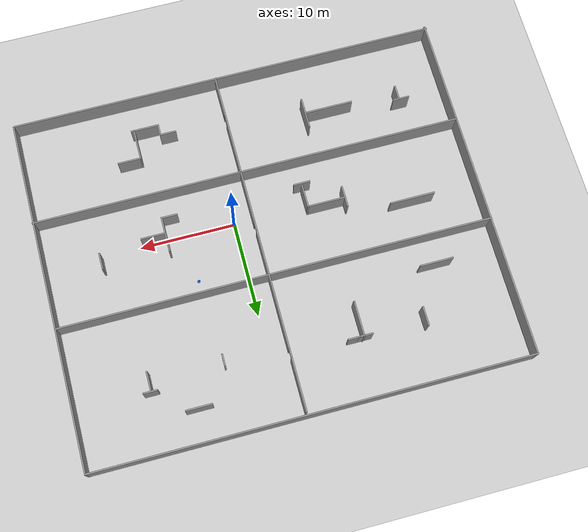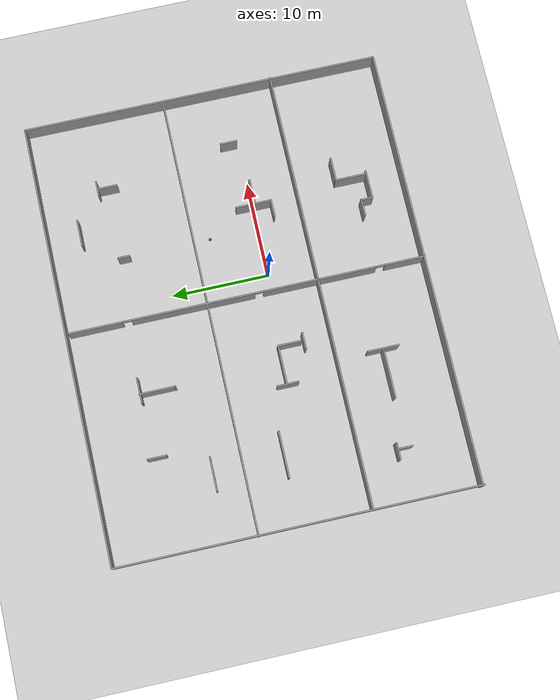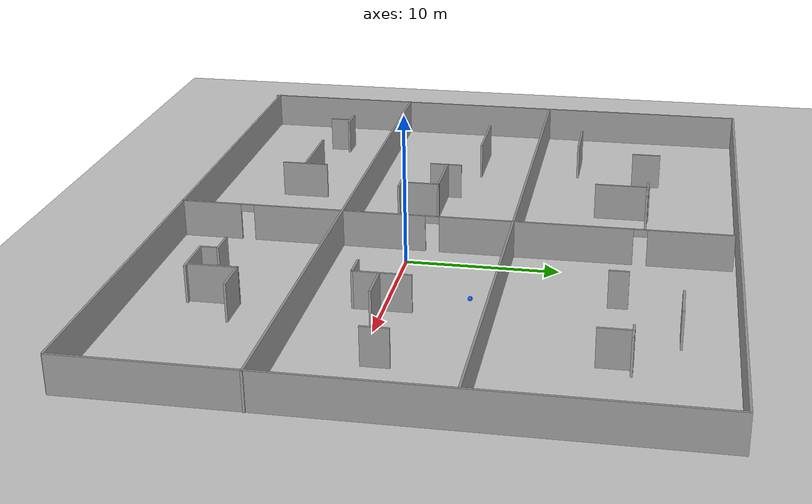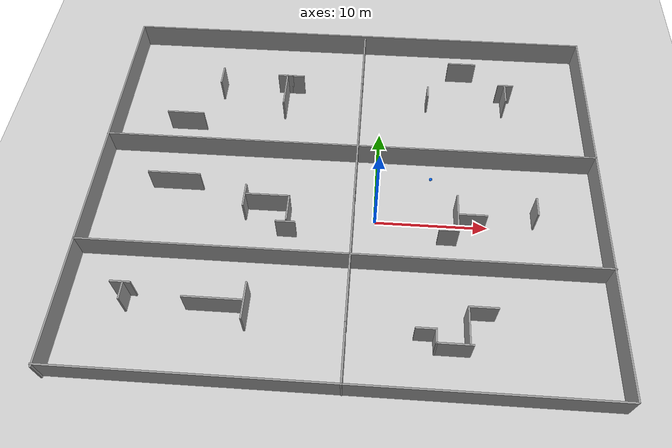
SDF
<sdf version="1.7">
 <world name="default">
  <light name="sun" type="directional">
   <pose>0 0 10 0 -0 0</pose>
   <diffuse>0.8 0.8 0.8 1</diffuse>
   <specular>0.2 0.2 0.2 1</specular>
   <attenuation>
    <range>1000</range>
    <constant>0.9</constant>
    <linear>0.01</linear>
    <quadratic>0.001</quadratic>
   </attenuation>
   <direction>-0.5 0.1 -0.9</direction>
   <spot><inner_angle>0</inner_angle><outer_angle>0</outer_angle><falloff>0</falloff></spot>
  </light>
  <model name="ground_plane">
   <static>1</static>
   <link name="link">
    <collision name="collision">
     <geometry><plane><normal>0 0 1</normal><size>100 100</size></plane></geometry>
     <surface><friction><ode><mu>100</mu><mu2>50</mu2></ode></friction></surface>
    </collision>
    <visual name="visual">
     <cast_shadows>0</cast_shadows>
     <geometry><plane><normal>0 0 1</normal><size>100 100</size></plane></geometry>
     <material>
      <script><uri>file://media/materials/scripts/gazebo.material</uri><name>Gazebo/Grey</name></script>
     </material>
    </visual>
   </link>
  </model>
  <gravity>0 0 -9.8</gravity>
  <magnetic_field>6e-06 2.3e-05 -4.2e-05</magnetic_field>
  <atmosphere type="adiabatic"/>
  <physics type="ode">
   <max_step_size>0.001</max_step_size>
   <real_time_factor>1</real_time_factor>
   <real_time_update_rate>1000</real_time_update_rate>
  </physics>
  <scene><ambient>0.4 0.4 0.4 1</ambient><background>0.7 0.7 0.7 1</background><shadows>1</shadows></scene>
  <spherical_coordinates>
   <surface_model>EARTH_WGS84</surface_model>
   <latitude_deg>0</latitude_deg>
   <longitude_deg>0</longitude_deg>
   <elevation>0</elevation>
   <heading_deg>0</heading_deg>
  </spherical_coordinates>
  <model name="map2">
   <pose>-2.78091 2.6918 0 0 -0 0</pose>
   <link name="Wall_146">
    <collision name="Wall_146_Collision">
     <geometry><box><size>3 0.15 2.5</size></box></geometry>
     <pose>0 0 1.25 0 -0 0</pose>
    </collision>
    <visual name="Wall_146_Visual">
     <pose>0 0 1.25 0 -0 0</pose>
     <geometry><box><size>3 0.15 2.5</size></box></geometry>
     <material>
      <script><uri>file://media/materials/scripts/gazebo.material</uri><name>Gazebo/Grey</name></script>
      <ambient>1 1 1 1</ambient>
     </material>
     <meta><layer>0</layer></meta>
    </visual>
    <pose>9.35667 -14.6992 0 0 -0 3.14159</pose>
   </link>
   <link name="Wall_147">
    <collision name="Wall_147_Collision">
     <geometry><box><size>1.19733 0.15 2.5</size></box></geometry>
     <pose>0 0 1.25 0 -0 0</pose>
    </collision>
    <visual name="Wall_147_Visual">
     <pose>0 0 1.25 0 -0 0</pose>
     <geometry><box><size>1.19733 0.15 2.5</size></box></geometry>
     <material>
      <script><uri>file://media/materials/scripts/gazebo.material</uri><name>Gazebo/Grey</name></script>
      <ambient>1 1 1 1</ambient>
     </material>
     <meta><layer>0</layer></meta>
    </visual>
    <pose>7.93167 -14.1756 0 0 -0 1.5708</pose>
   </link>
   <link name="Wall_148">
    <collision name="Wall_148_Collision">
     <geometry><box><size>1.75 0.15 2.5</size></box></geometry>
     <pose>0 0 1.25 0 -0 0</pose>
    </collision>
    <visual name="Wall_148_Visual">
     <pose>0 0 1.25 0 -0 0</pose>
     <geometry><box><size>1.75 0.15 2.5</size></box></geometry>
     <material>
      <script><uri>file://media/materials/scripts/gazebo.material</uri><name>Gazebo/Grey</name></script>
      <ambient>1 1 1 1</ambient>
     </material>
     <meta><layer>0</layer></meta>
    </visual>
    <pose>7.13167 -13.5589 0 0 -0 3.14159</pose>
   </link>
   <link name="Wall_161">
    <collision name="Wall_161_Collision">
     <geometry><box><size>37.25 0.15 2.5</size></box></geometry>
     <pose>0 0 1.25 0 -0 0</pose>
    </collision>
    <visual name="Wall_161_Visual">
     <pose>0 0 1.25 0 -0 0</pose>
     <geometry><box><size>37.25 0.15 2.5</size></box></geometry>
     <material>
      <script><uri>file://media/materials/scripts/gazebo.material</uri><name>Gazebo/Grey</name></script>
      <ambient>1 1 1 1</ambient>
     </material>
     <meta><layer>0</layer></meta>
    </visual>
    <pose>-22.6696 -0 0 0 -0 1.5708</pose>
   </link>
   <link name="Wall_164">
    <collision name="Wall_164_Collision">
     <geometry><box><size>45.5 0.15 2.5</size></box></geometry>
     <pose>0 0 1.25 0 -0 0</pose>
    </collision>
    <visual name="Wall_164_Visual">
     <pose>0 0 1.25 0 -0 0</pose>
     <geometry><box><size>45.5 0.15 2.5</size></box></geometry>
     <material>
      <script><uri>file://media/materials/scripts/gazebo.material</uri><name>Gazebo/Grey</name></script>
      <ambient>1 1 1 1</ambient>
     </material>
     <meta><layer>0</layer></meta>
    </visual>
    <pose>-0.07594 -18.3696 0 0 -0 3.14159</pose>
   </link>
   <link name="Wall_166">
    <collision name="Wall_166_Collision">
     <geometry><box><size>45.5 0.15 2.5</size></box></geometry>
     <pose>0 0 1.25 0 -0 0</pose>
    </collision>
    <visual name="Wall_166_Visual">
     <pose>0 0 1.25 0 -0 0</pose>
     <geometry><box><size>45.5 0.15 2.5</size></box></geometry>
     <material>
      <script><uri>file://media/materials/scripts/gazebo.material</uri><name>Gazebo/Grey</name></script>
      <ambient>1 1 1 1</ambient>
     </material>
     <meta><layer>0</layer></meta>
    </visual>
    <pose>0.005431 18.55 0 0 -0 0</pose>
   </link>
   <link name="Wall_167">
    <collision name="Wall_167_Collision">
     <geometry><box><size>37 0.15 2.5</size></box></geometry>
     <pose>0 0 1.25 0 -0 0</pose>
    </collision>
    <visual name="Wall_167_Visual">
     <pose>0 0 1.25 0 -0 0</pose>
     <geometry><box><size>37 0.15 2.5</size></box></geometry>
     <material>
      <script><uri>file://media/materials/scripts/gazebo.material</uri><name>Gazebo/Grey</name></script>
      <ambient>1 1 1 1</ambient>
     </material>
     <meta><layer>0</layer></meta>
    </visual>
    <pose>22.6804 0.125 0 0 -0 -1.5708</pose>
   </link>
   <link name="Wall_170">
    <collision name="Wall_170_Collision">
     <geometry><box><size>45.5 0.15 2.5</size></box></geometry>
     <pose>0 0 1.25 0 -0 0</pose>
    </collision>
    <visual name="Wall_170_Visual">
     <pose>0 0 1.25 0 -0 0</pose>
     <geometry><box><size>45.5 0.15 2.5</size></box></geometry>
     <material>
      <script><uri>file://media/materials/scripts/gazebo.material</uri><name>Gazebo/Grey</name></script>
      <ambient>1 1 1 1</ambient>
     </material>
     <meta><layer>0</layer></meta>
    </visual>
    <pose>-0.017636 4.05035 0 0 -0 0</pose>
   </link>
   <link name="Wall_172">
    <collision name="Wall_172_Collision">
     <geometry><box><size>45.5 0.15 2.5</size></box></geometry>
     <pose>0 0 1.25 0 -0 0</pose>
    </collision>
    <visual name="Wall_172_Visual">
     <pose>0 0 1.25 0 -0 0</pose>
     <geometry><box><size>45.5 0.15 2.5</size></box></geometry>
     <material>
      <script><uri>file://media/materials/scripts/gazebo.material</uri><name>Gazebo/Grey</name></script>
      <ambient>1 1 1 1</ambient>
     </material>
     <meta><layer>0</layer></meta>
    </visual>
    <pose>0.075941 -7.36595 0 0 -0 0</pose>
   </link>
   <link name="Wall_174">
    <pose>0.801862 -0.107416 0 0 -0 1.5708</pose>
    <visual name="Wall_174_Visual_0">
     <pose>-16.2916 0 1.25 0 -0 0</pose>
     <geometry><box><size>4.16685 0.15 2.5</size></box></geometry>
     <material>
      <script><uri>file://media/materials/scripts/gazebo.material</uri><name>Gazebo/Grey</name></script>
      <ambient>1 1 1 1</ambient>
     </material>
     <meta><layer>0</layer></meta>
    </visual>
    <collision name="Wall_174_Collision_0">
     <geometry><box><size>4.16685 0.15 2.5</size></box></geometry>
     <pose>-16.2916 0 1.25 0 -0 0</pose>
    </collision>
    <visual name="Wall_174_Visual_1">
     <pose>-7.47742 0 1.25 0 -0 0</pose>
     <geometry><box><size>11.6615 0.15 2.5</size></box></geometry>
     <material>
      <script><uri>file://media/materials/scripts/gazebo.material</uri><name>Gazebo/Grey</name></script>
      <ambient>1 1 1 1</ambient>
     </material>
     <meta><layer>0</layer></meta>
    </visual>
    <collision name="Wall_174_Collision_1">
     <geometry><box><size>11.6615 0.15 2.5</size></box></geometry>
     <pose>-7.47742 0 1.25 0 -0 0</pose>
    </collision>
    <visual name="Wall_174_Visual_2">
     <pose>5.5958 0 1.25 0 -0 0</pose>
     <geometry><box><size>12.685 0.15 2.5</size></box></geometry>
     <material>
      <script><uri>file://media/materials/scripts/gazebo.material</uri><name>Gazebo/Grey</name></script>
      <ambient>1 1 1 1</ambient>
     </material>
     <meta><layer>0</layer></meta>
    </visual>
    <collision name="Wall_174_Collision_2">
     <geometry><box><size>12.685 0.15 2.5</size></box></geometry>
     <pose>5.5958 0 1.25 0 -0 0</pose>
    </collision>
    <visual name="Wall_174_Visual_3">
     <pose>15.6066 0 1.25 0 -0 0</pose>
     <geometry><box><size>5.53671 0.15 2.5</size></box></geometry>
     <material>
      <script><uri>file://media/materials/scripts/gazebo.material</uri><name>Gazebo/Grey</name></script>
      <ambient>1 1 1 1</ambient>
     </material>
     <meta><layer>0</layer></meta>
    </visual>
    <collision name="Wall_174_Collision_3">
     <geometry><box><size>5.53671 0.15 2.5</size></box></geometry>
     <pose>15.6066 0 1.25 0 -0 0</pose>
    </collision>
    <visual name="Wall_174_Visual_4">
     <pose>-13.7582 0 2.25 0 -0 0</pose>
     <geometry><box><size>0.9 0.15 0.5</size></box></geometry>
     <material>
      <script><uri>file://media/materials/scripts/gazebo.material</uri><name>Gazebo/Grey</name></script>
      <ambient>1 1 1 1</ambient>
     </material>
     <meta><layer>0</layer></meta>
    </visual>
    <collision name="Wall_174_Collision_4">
     <geometry><box><size>0.9 0.15 0.5</size></box></geometry>
     <pose>-13.7582 0 2.25 0 -0 0</pose>
    </collision>
    <visual name="Wall_174_Visual_5">
     <pose>-1.19669 0 2.25 0 -0 0</pose>
     <geometry><box><size>0.9 0.15 0.5</size></box></geometry>
     <material>
      <script><uri>file://media/materials/scripts/gazebo.material</uri><name>Gazebo/Grey</name></script>
      <ambient>1 1 1 1</ambient>
     </material>
     <meta><layer>0</layer></meta>
    </visual>
    <collision name="Wall_174_Collision_5">
     <geometry><box><size>0.9 0.15 0.5</size></box></geometry>
     <pose>-1.19669 0 2.25 0 -0 0</pose>
    </collision>
    <visual name="Wall_174_Visual_6">
     <pose>12.3883 0 2.25 0 -0 0</pose>
     <geometry><box><size>0.9 0.15 0.5</size></box></geometry>
     <material>
      <script><uri>file://media/materials/scripts/gazebo.material</uri><name>Gazebo/Grey</name></script>
      <ambient>1 1 1 1</ambient>
     </material>
     <meta><layer>0</layer></meta>
    </visual>
    <collision name="Wall_174_Collision_6">
     <geometry><box><size>0.9 0.15 0.5</size></box></geometry>
     <pose>12.3883 0 2.25 0 -0 0</pose>
    </collision>
   </link>
   <link name="Wall_176">
    <collision name="Wall_176_Collision">
     <geometry><box><size>2.5 0.15 2.5</size></box></geometry>
     <pose>0 0 1.25 0 -0 0</pose>
    </collision>
    <visual name="Wall_176_Visual">
     <pose>0 0 1.25 0 -0 0</pose>
     <geometry><box><size>2.5 0.15 2.5</size></box></geometry>
     <material>
      <script><uri>file://media/materials/scripts/gazebo.material</uri><name>Gazebo/Grey</name></script>
      <ambient>1 1 1 1</ambient>
     </material>
     <meta><layer>0</layer></meta>
    </visual>
    <pose>-4.93237 -3.10664 0 0 -0 1.5708</pose>
   </link>
   <link name="Wall_177">
    <collision name="Wall_177_Collision">
     <geometry><box><size>4 0.15 2.5</size></box></geometry>
     <pose>0 0 1.25 0 -0 0</pose>
    </collision>
    <visual name="Wall_177_Visual">
     <pose>0 0 1.25 0 -0 0</pose>
     <geometry><box><size>4 0.15 2.5</size></box></geometry>
     <material>
      <script><uri>file://media/materials/scripts/gazebo.material</uri><name>Gazebo/Grey</name></script>
      <ambient>1 1 1 1</ambient>
     </material>
     <meta><layer>0</layer></meta>
    </visual>
    <pose>-6.85737 -1.93164 0 0 -0 3.14159</pose>
   </link>
   <link name="Wall_179">
    <collision name="Wall_179_Collision">
     <geometry><box><size>4.75 0.15 2.5</size></box></geometry>
     <pose>0 0 1.25 0 -0 0</pose>
    </collision>
    <visual name="Wall_179_Visual">
     <pose>0 0 1.25 0 -0 0</pose>
     <geometry><box><size>4.75 0.15 2.5</size></box></geometry>
     <material>
      <script><uri>file://media/materials/scripts/gazebo.material</uri><name>Gazebo/Grey</name></script>
      <ambient>1 1 1 1</ambient>
     </material>
     <meta><layer>0</layer></meta>
    </visual>
    <pose>-15.566 -0.094487 0 0 -0 0</pose>
   </link>
   <link name="Wall_181">
    <collision name="Wall_181_Collision">
     <geometry><box><size>5 0.15 2.5</size></box></geometry>
     <pose>0 0 1.25 0 -0 0</pose>
    </collision>
    <visual name="Wall_181_Visual">
     <pose>0 0 1.25 0 -0 0</pose>
     <geometry><box><size>5 0.15 2.5</size></box></geometry>
     <material>
      <script><uri>file://media/materials/scripts/gazebo.material</uri><name>Gazebo/Grey</name></script>
      <ambient>1 1 1 1</ambient>
     </material>
     <meta><layer>0</layer></meta>
    </visual>
    <pose>-10.0442 -12.0977 0 0 -0 0</pose>
   </link>
   <link name="Wall_183">
    <collision name="Wall_183_Collision">
     <geometry><box><size>0.16 0.15 2.5</size></box></geometry>
     <pose>0 0 1.25 0 -0 0</pose>
    </collision>
    <visual name="Wall_183_Visual">
     <pose>0 0 1.25 0 -0 0</pose>
     <geometry><box><size>0.16 0.15 2.5</size></box></geometry>
     <material>
      <script><uri>file://media/materials/scripts/gazebo.material</uri><name>Gazebo/Grey</name></script>
      <ambient>1 1 1 1</ambient>
     </material>
     <meta><layer>0</layer></meta>
    </visual>
    <pose>-6.69528 8.93115 0 0 -0 0</pose>
   </link>
   <link name="Wall_184">
    <collision name="Wall_184_Collision">
     <geometry><box><size>3.75 0.15 2.5</size></box></geometry>
     <pose>0 0 1.25 0 -0 0</pose>
    </collision>
    <visual name="Wall_184_Visual">
     <pose>0 0 1.25 0 -0 0</pose>
     <geometry><box><size>3.75 0.15 2.5</size></box></geometry>
     <material>
      <script><uri>file://media/materials/scripts/gazebo.material</uri><name>Gazebo/Grey</name></script>
      <ambient>1 1 1 1</ambient>
     </material>
     <meta><layer>0</layer></meta>
    </visual>
    <pose>-6.69028 10.7312 0 0 -0 1.5708</pose>
   </link>
   <link name="Wall_186">
    <collision name="Wall_186_Collision">
     <geometry><box><size>1.25 0.15 2.5</size></box></geometry>
     <pose>0 0 1.25 0 -0 0</pose>
    </collision>
    <visual name="Wall_186_Visual">
     <pose>0 0 1.25 0 -0 0</pose>
     <geometry><box><size>1.25 0.15 2.5</size></box></geometry>
     <material>
      <script><uri>file://media/materials/scripts/gazebo.material</uri><name>Gazebo/Grey</name></script>
      <ambient>1 1 1 1</ambient>
     </material>
     <meta><layer>0</layer></meta>
    </visual>
    <pose>-5.64312 12.4649 0 0 -0 0</pose>
   </link>
   <link name="Wall_188">
    <collision name="Wall_188_Collision">
     <geometry><box><size>3.5 0.15 2.5</size></box></geometry>
     <pose>0 0 1.25 0 -0 0</pose>
    </collision>
    <visual name="Wall_188_Visual">
     <pose>0 0 1.25 0 -0 0</pose>
     <geometry><box><size>3.5 0.15 2.5</size></box></geometry>
     <material>
      <script><uri>file://media/materials/scripts/gazebo.material</uri><name>Gazebo/Grey</name></script>
      <ambient>1 1 1 1</ambient>
     </material>
     <meta><layer>0</layer></meta>
    </visual>
    <pose>-15.9119 7.0702 0 0 -0 0</pose>
   </link>
   <link name="Wall_193">
    <collision name="Wall_193_Collision">
     <geometry><box><size>2.5 0.15 2.5</size></box></geometry>
     <pose>0 0 1.25 0 -0 0</pose>
    </collision>
    <visual name="Wall_193_Visual">
     <pose>0 0 1.25 0 -0 0</pose>
     <geometry><box><size>2.5 0.15 2.5</size></box></geometry>
     <material>
      <script><uri>file://media/materials/scripts/gazebo.material</uri><name>Gazebo/Grey</name></script>
      <ambient>1 1 1 1</ambient>
     </material>
     <meta><layer>0</layer></meta>
    </visual>
    <pose>11.2233 -2.88592 0 0 -0 0</pose>
   </link>
   <link name="Wall_199">
    <collision name="Wall_199_Collision">
     <geometry><box><size>3.25 0.15 2.5</size></box></geometry>
     <pose>0 0 1.25 0 -0 0</pose>
    </collision>
    <visual name="Wall_199_Visual">
     <pose>0 0 1.25 0 -0 0</pose>
     <geometry><box><size>3.25 0.15 2.5</size></box></geometry>
     <material>
      <script><uri>file://media/materials/scripts/gazebo.material</uri><name>Gazebo/Grey</name></script>
      <ambient>1 1 1 1</ambient>
     </material>
     <meta><layer>0</layer></meta>
    </visual>
    <pose>10.5236 -13.0599 0 0 -0 1.5708</pose>
   </link>
   <link name="Wall_200">
    <collision name="Wall_200_Collision">
     <geometry><box><size>2.5 0.15 2.5</size></box></geometry>
     <pose>0 0 1.25 0 -0 0</pose>
    </collision>
    <visual name="Wall_200_Visual">
     <pose>0 0 1.25 0 -0 0</pose>
     <geometry><box><size>2.5 0.15 2.5</size></box></geometry>
     <material>
      <script><uri>file://media/materials/scripts/gazebo.material</uri><name>Gazebo/Grey</name></script>
      <ambient>1 1 1 1</ambient>
     </material>
     <meta><layer>0</layer></meta>
    </visual>
    <pose>11.6986 -11.5099 0 0 -0 0</pose>
   </link>
   <link name="Wall_31">
    <collision name="Wall_31_Collision">
     <geometry><box><size>3.75 0.15 2.5</size></box></geometry>
     <pose>0 0 1.25 0 -0 0</pose>
    </collision>
    <visual name="Wall_31_Visual">
     <pose>0 0 1.25 0 -0 0</pose>
     <geometry><box><size>3.75 0.15 2.5</size></box></geometry>
     <material>
      <script><uri>file://media/materials/scripts/gazebo.material</uri><name>Gazebo/Grey</name></script>
      <ambient>1 1 1 1</ambient>
     </material>
     <meta><layer>0</layer></meta>
    </visual>
    <pose>9.90654 -2.75337 0 0 -0 -1.5708</pose>
   </link>
   <link name="Wall_32">
    <collision name="Wall_32_Collision">
     <geometry><box><size>1.75 0.15 2.5</size></box></geometry>
     <pose>0 0 1.25 0 -0 0</pose>
    </collision>
    <visual name="Wall_32_Visual">
     <pose>0 0 1.25 0 -0 0</pose>
     <geometry><box><size>1.75 0.15 2.5</size></box></geometry>
     <material>
      <script><uri>file://media/materials/scripts/gazebo.material</uri><name>Gazebo/Grey</name></script>
      <ambient>1 1 1 1</ambient>
     </material>
     <meta><layer>0</layer></meta>
    </visual>
    <pose>9.10654 -4.55337 0 0 -0 3.14159</pose>
   </link>
   <link name="Wall_36">
    <collision name="Wall_36_Collision">
     <geometry><box><size>1.75 0.15 2.5</size></box></geometry>
     <pose>0 0 1.25 0 -0 0</pose>
    </collision>
    <visual name="Wall_36_Visual">
     <pose>0 0 1.25 0 -0 0</pose>
     <geometry><box><size>1.75 0.15 2.5</size></box></geometry>
     <material>
      <script><uri>file://media/materials/scripts/gazebo.material</uri><name>Gazebo/Grey</name></script>
      <ambient>1 1 1 1</ambient>
     </material>
     <meta><layer>0</layer></meta>
    </visual>
    <pose>16.8516 -1.64901 0 0 -0 -1.5708</pose>
   </link>
   <link name="Wall_38">
    <collision name="Wall_38_Collision">
     <geometry><box><size>2.75 0.15 2.5</size></box></geometry>
     <pose>0 0 1.25 0 -0 0</pose>
    </collision>
    <visual name="Wall_38_Visual">
     <pose>0 0 1.25 0 -0 0</pose>
     <geometry><box><size>2.75 0.15 2.5</size></box></geometry>
     <material>
      <script><uri>file://media/materials/scripts/gazebo.material</uri><name>Gazebo/Grey</name></script>
      <ambient>1 1 1 1</ambient>
     </material>
     <meta><layer>0</layer></meta>
    </visual>
    <pose>10.7521 15.1509 0 0 -0 0</pose>
   </link>
   <link name="Wall_40">
    <collision name="Wall_40_Collision">
     <geometry><box><size>2 0.15 2.5</size></box></geometry>
     <pose>0 0 1.25 0 -0 0</pose>
    </collision>
    <visual name="Wall_40_Visual">
     <pose>0 0 1.25 0 -0 0</pose>
     <geometry><box><size>2 0.15 2.5</size></box></geometry>
     <material>
      <script><uri>file://media/materials/scripts/gazebo.material</uri><name>Gazebo/Grey</name></script>
      <ambient>1 1 1 1</ambient>
     </material>
     <meta><layer>0</layer></meta>
    </visual>
    <pose>14.8864 11.4329 0 0 -0 -1.5708</pose>
   </link>
   <link name="Wall_42">
    <collision name="Wall_42_Collision">
     <geometry><box><size>1.5 0.15 2.5</size></box></geometry>
     <pose>0 0 1.25 0 -0 0</pose>
    </collision>
    <visual name="Wall_42_Visual">
     <pose>0 0 1.25 0 -0 0</pose>
     <geometry><box><size>1.5 0.15 2.5</size></box></geometry>
     <material>
      <script><uri>file://media/materials/scripts/gazebo.material</uri><name>Gazebo/Grey</name></script>
      <ambient>1 1 1 1</ambient>
     </material>
     <meta><layer>0</layer></meta>
    </visual>
    <pose>14.9675 12.4828 0 0 -0 3.14159</pose>
   </link>
   <link name="Wall_44">
    <collision name="Wall_44_Collision">
     <geometry><box><size>1.25 0.15 2.5</size></box></geometry>
     <pose>0 0 1.25 0 -0 0</pose>
    </collision>
    <visual name="Wall_44_Visual">
     <pose>0 0 1.25 0 -0 0</pose>
     <geometry><box><size>1.25 0.15 2.5</size></box></geometry>
     <material>
      <script><uri>file://media/materials/scripts/gazebo.material</uri><name>Gazebo/Grey</name></script>
      <ambient>1 1 1 1</ambient>
     </material>
     <meta><layer>0</layer></meta>
    </visual>
    <pose>7.32953 11.2692 0 0 -0 -1.5708</pose>
   </link>
   <link name="Wall_49">
    <collision name="Wall_49_Collision">
     <geometry><box><size>1.75 0.15 2.5</size></box></geometry>
     <pose>0 0 1.25 0 -0 0</pose>
    </collision>
    <visual name="Wall_49_Visual">
     <pose>0 0 1.25 0 -0 0</pose>
     <geometry><box><size>1.75 0.15 2.5</size></box></geometry>
     <material>
      <script><uri>file://media/materials/scripts/gazebo.material</uri><name>Gazebo/Grey</name></script>
      <ambient>1 1 1 1</ambient>
     </material>
     <meta><layer>0</layer></meta>
    </visual>
    <pose>-17.7198 -11.1286 0 0 -0 3.14159</pose>
   </link>
   <link name="Wall_54">
    <collision name="Wall_54_Collision">
     <geometry><box><size>1.5 0.15 2.5</size></box></geometry>
     <pose>0 0 1.25 0 -0 0</pose>
    </collision>
    <visual name="Wall_54_Visual">
     <pose>0 0 1.25 0 -0 0</pose>
     <geometry><box><size>1.5 0.15 2.5</size></box></geometry>
     <material>
      <script><uri>file://media/materials/scripts/gazebo.material</uri><name>Gazebo/Grey</name></script>
      <ambient>1 1 1 1</ambient>
     </material>
     <meta><layer>0</layer></meta>
    </visual>
    <pose>-17.4898 -11.9103 0 0 -0 -1.5708</pose>
   </link>
   <link name="Wall_56">
    <collision name="Wall_56_Collision">
     <geometry><box><size>3.25 0.15 2.5</size></box></geometry>
     <pose>0 0 1.25 0 -0 0</pose>
    </collision>
    <visual name="Wall_56_Visual">
     <pose>0 0 1.25 0 -0 0</pose>
     <geometry><box><size>3.25 0.15 2.5</size></box></geometry>
     <material>
      <script><uri>file://media/materials/scripts/gazebo.material</uri><name>Gazebo/Grey</name></script>
      <ambient>1 1 1 1</ambient>
     </material>
     <meta><layer>0</layer></meta>
    </visual>
    <pose>-7.44393 -12.1019 0 0 -0 -1.5708</pose>
   </link>
   <link name="Wall_58">
    <collision name="Wall_58_Collision">
     <geometry><box><size>2.25 0.15 2.5</size></box></geometry>
     <pose>0 0 1.25 0 -0 0</pose>
    </collision>
    <visual name="Wall_58_Visual">
     <pose>0 0 1.25 0 -0 0</pose>
     <geometry><box><size>2.25 0.15 2.5</size></box></geometry>
     <material>
      <script><uri>file://media/materials/scripts/gazebo.material</uri><name>Gazebo/Grey</name></script>
      <ambient>1 1 1 1</ambient>
     </material>
     <meta><layer>0</layer></meta>
    </visual>
    <pose>-8.87552 -2.04394 0 0 -0 -1.5708</pose>
   </link>
   <link name="Wall_64">
    <collision name="Wall_64_Collision">
     <geometry><box><size>1.75 0.15 2.5</size></box></geometry>
     <pose>0 0 1.25 0 -0 0</pose>
    </collision>
    <visual name="Wall_64_Visual">
     <pose>0 0 1.25 0 -0 0</pose>
     <geometry><box><size>1.75 0.15 2.5</size></box></geometry>
     <material>
      <script><uri>file://media/materials/scripts/gazebo.material</uri><name>Gazebo/Grey</name></script>
      <ambient>1 1 1 1</ambient>
     </material>
     <meta><layer>0</layer></meta>
    </visual>
    <pose>-4.98351 -4.56819 0 0 -0 3.14159</pose>
   </link>
   <link name="Wall_70">
    <collision name="Wall_70_Collision">
     <geometry><box><size>1.5 0.15 2.5</size></box></geometry>
     <pose>0 0 1.25 0 -0 0</pose>
    </collision>
    <visual name="Wall_70_Visual">
     <pose>0 0 1.25 0 -0 0</pose>
     <geometry><box><size>1.5 0.15 2.5</size></box></geometry>
     <material>
      <script><uri>file://media/materials/scripts/gazebo.material</uri><name>Gazebo/Grey</name></script>
      <ambient>1 1 1 1</ambient>
     </material>
     <meta><layer>0</layer></meta>
    </visual>
    <pose>-6.86812 12.4649 0 0 -0 0</pose>
   </link>
   <link name="Wall_73">
    <collision name="Wall_73_Collision">
     <geometry><box><size>2 0.15 2.5</size></box></geometry>
     <pose>0 0 1.25 0 -0 0</pose>
    </collision>
    <visual name="Wall_73_Visual">
     <pose>0 0 1.25 0 -0 0</pose>
     <geometry><box><size>2 0.15 2.5</size></box></geometry>
     <material>
      <script><uri>file://media/materials/scripts/gazebo.material</uri><name>Gazebo/Grey</name></script>
      <ambient>1 1 1 1</ambient>
     </material>
     <meta><layer>0</layer></meta>
    </visual>
    <pose>-13.1609 12.1337 0 0 -0 1.5708</pose>
   </link>
   <static>1</static>
  </model>
  <include><uri>model://blue_ball</uri><name>goal_blue_ball</name><pose>5 5 0.15 0 0 0</pose></include>
 </world>
</sdf>

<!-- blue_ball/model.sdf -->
<sdf version="1.5">
  <model name="blue_ball">
    <static>true</static>
    <link name="link">
      <inertial>
        <mass>0.5</mass>
        <inertia>
          <ixx>0.01</ixx>
          <ixy>0.0</ixy>
          <ixz>0.0</ixz>
          <iyy>0.01</iyy>
          <iyz>0.0</iyz>
          <izz>0.01</izz>
        </inertia>
      </inertial>

      <collision name="collision">
        <geometry>
          <sphere>
            <radius>0.15</radius>
          </sphere>
        </geometry>
      </collision>

      <visual name="visual">
        <geometry>
          <sphere>
            <radius>0.15</radius>
          </sphere>
        </geometry>
        <material>
          <ambient>0.0 0.0 1.0 1</ambient>
          <diffuse>0.0 0.4 1.0 1</diffuse>
          <specular>0.5 0.5 1.0 1</specular>
          <emissive>0 0 0.2 1</emissive>
        </material>
      </visual>
    </link>
  </model>
</sdf>
